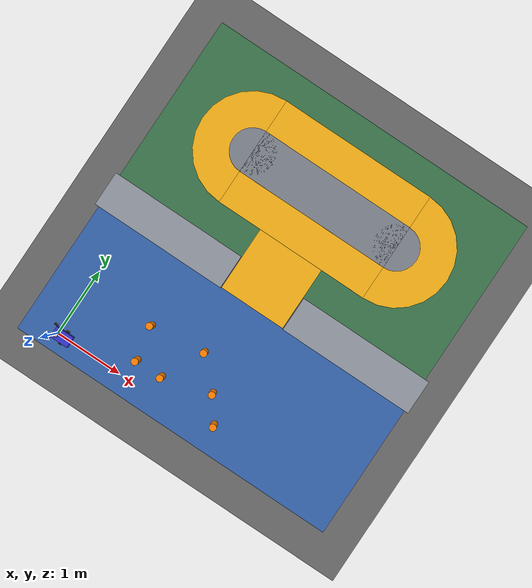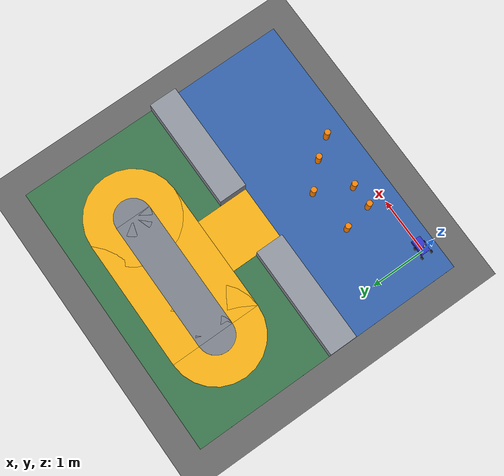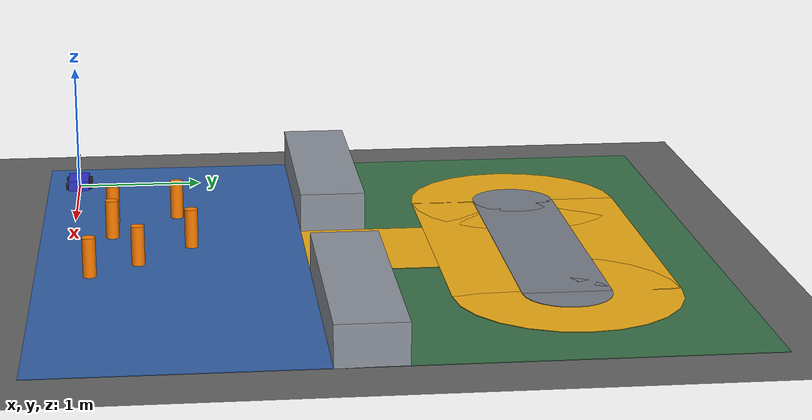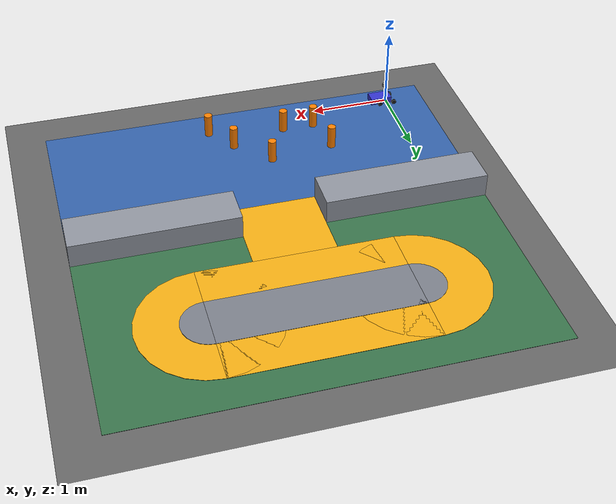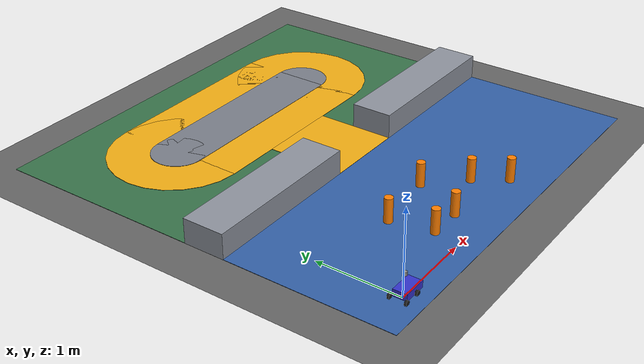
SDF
<?xml version="1.0" ?>
<sdf version="1.8">
<world name="smartcar_track">
  <!-- Physics: 200Hz step (0.005s), sufficient for 0.30 m/s Ackermann navigation.
       type="dart" is Gazebo Fortress default; 5ms vs 1ms saves ~40% CPU. -->
  <physics name="5ms" type="dart">
    <max_step_size>0.005</max_step_size>
    <real_time_factor>1.0</real_time_factor>
  </physics>

  <!-- User commands -->
  <plugin
    filename="ignition-gazebo-user-commands-system"
    name="ignition::gazebo::systems::UserCommands">
  </plugin>

  <!-- Physics -->
  <plugin
    filename="ignition-gazebo-physics-system"
    name="ignition::gazebo::systems::Physics">
  </plugin>

  <!-- Sensors (LiDAR + IMU) -->
  <plugin
    filename="ignition-gazebo-sensors-system"
    name="ignition::gazebo::systems::Sensors">
    <!-- GPU lidar needs the same Ogre2 renderer in GUI and server-only runs. -->
    <render_engine>ogre2</render_engine>
  </plugin>

  <!-- Scene broadcaster -->
  <plugin
    filename="ignition-gazebo-scene-broadcaster-system"
    name="ignition::gazebo::systems::SceneBroadcaster">
  </plugin>

  <!-- ===== LIGHTING ===== -->
  <light type="directional" name="sun">
    <pose>5 5 10 0 0 0</pose>
    <diffuse>1 1 1 1</diffuse>
    <specular>0.5 0.5 0.5 1</specular>
    <attenuation>
      <range>50</range>
    </attenuation>
    <direction>-0.5 -0.5 -1.0</direction>
    <cast_shadows>true</cast_shadows>
  </light>

  <!-- ===== GROUND PLANE ===== -->
  <model name="ground_plane">
    <static>true</static>
    <link name="link">
      <collision name="collision">
        <geometry>
          <plane>
            <normal>0 0 1</normal>
            <size>20 20</size>
          </plane>
        </geometry>
        <surface>
          <friction>
            <ode><mu>0.8</mu><mu2>0.8</mu2></ode>
          </friction>
        </surface>
      </collision>
      <visual name="visual">
        <geometry>
          <plane>
            <normal>0 0 1</normal>
            <size>20 20</size>
          </plane>
        </geometry>
        <material>
          <ambient>0.3 0.3 0.3 1</ambient>
          <diffuse>0.4 0.4 0.4 1</diffuse>
        </material>
      </visual>
    </link>
  </model>

  <!-- Generated from smartcar_tools/config/routes/field_geometry.yaml.
       Collision policy lives in config/competition_field_model.yaml. -->
  <include>
    <uri>model://competition_field</uri>
  </include>

  <model name="cone_a1"><static>true</static><pose>1.1 0.3 0.15 0 0 0</pose>
    <link name="link">
      <visual name="v"><geometry><cylinder><radius>0.05</radius><length>0.30</length></cylinder></geometry>
      <material><ambient>1 0.5 0 1</ambient><diffuse>1 0.5 0 1</diffuse></material></visual>
      <collision name="c"><geometry><cylinder><radius>0.05</radius><length>0.30</length></cylinder></geometry></collision>
    </link></model>
  <model name="cone_a2"><static>true</static><pose>1.5 0.3 0.15 0 0 0</pose>
    <link name="link">
      <visual name="v"><geometry><cylinder><radius>0.05</radius><length>0.30</length></cylinder></geometry>
      <material><ambient>1 0.5 0 1</ambient><diffuse>1 0.5 0 1</diffuse></material></visual>
      <collision name="c"><geometry><cylinder><radius>0.05</radius><length>0.30</length></cylinder></geometry></collision>
    </link></model>
  <model name="cone_a3"><static>true</static><pose>2.2 0.5 0.15 0 0 0.3</pose>
    <link name="link">
      <visual name="v"><geometry><cylinder><radius>0.05</radius><length>0.30</length></cylinder></geometry>
      <material><ambient>1 0.5 0 1</ambient><diffuse>1 0.5 0 1</diffuse></material></visual>
      <collision name="c"><geometry><cylinder><radius>0.05</radius><length>0.30</length></cylinder></geometry></collision>
    </link></model>
  <model name="cone_a4"><static>true</static><pose>1.0 0.8 0.15 0 0 0.5</pose>
    <link name="link">
      <visual name="v"><geometry><cylinder><radius>0.05</radius><length>0.30</length></cylinder></geometry>
      <material><ambient>1 0.5 0 1</ambient><diffuse>1 0.5 0 1</diffuse></material></visual>
      <collision name="c"><geometry><cylinder><radius>0.05</radius><length>0.30</length></cylinder></geometry></collision>
    </link></model>
  <model name="cone_a5"><static>true</static><pose>1.8 0.9 0.15 0 0 -0.3</pose>
    <link name="link">
      <visual name="v"><geometry><cylinder><radius>0.05</radius><length>0.30</length></cylinder></geometry>
      <material><ambient>1 0.5 0 1</ambient><diffuse>1 0.5 0 1</diffuse></material></visual>
      <collision name="c"><geometry><cylinder><radius>0.05</radius><length>0.30</length></cylinder></geometry></collision>
    </link></model>
  <!-- Keep this physical A-zone return inside the 2.5 m startup scan range,
       while leaving the protected QR vehicle footprint clear. -->
  <model name="cone_a6"><static>true</static><pose>2.45 0.15 0.15 0 0 0.7</pose>
    <link name="link">
      <visual name="v"><geometry><cylinder><radius>0.05</radius><length>0.30</length></cylinder></geometry>
      <material><ambient>1 0.5 0 1</ambient><diffuse>1 0.5 0 1</diffuse></material></visual>
      <collision name="c"><geometry><cylinder><radius>0.05</radius><length>0.30</length></cylinder></geometry></collision>
    </link></model>

  <!-- ===== ROBOT ===== -->
  <include>
    <!-- base_footprint is the rear-axle ground projection. Wheel centres in
         the model already sit one wheel radius above this plane. -->
    <pose>0 0 0 0 0 0</pose>
    <uri>model://origincar</uri>
  </include>

</world>
</sdf>

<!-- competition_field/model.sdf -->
<sdf version="1.8">
  <!-- Generated by scripts/generate_competition_field.py; do not edit. -->
  <model name="competition_field">
    <static>true</static>
    <link name="field">
      <visual name="zone_a_surface">
        <pose>2 0.75 0.002 0 0 0</pose>
        <geometry>
          <box>
            <size>5 2 0.004</size>
          </box>
        </geometry>
        <material>
          <ambient>0.2 0.38 0.66 1</ambient>
          <diffuse>0.2 0.38 0.66 1</diffuse>
        </material>
      </visual>
      <visual name="zone_b_surface">
        <pose>2 2 0.002 0 0 0</pose>
        <geometry>
          <box>
            <size>5 0.5 0.004</size>
          </box>
        </geometry>
        <material>
          <ambient>0.37 0.39 0.43 1</ambient>
          <diffuse>0.37 0.39 0.43 1</diffuse>
        </material>
      </visual>
      <visual name="zone_c_surface">
        <pose>2 3.5 0.002 0 0 0</pose>
        <geometry>
          <box>
            <size>5 2.5 0.004</size>
          </box>
        </geometry>
        <material>
          <ambient>0.22 0.45 0.29 1</ambient>
          <diffuse>0.22 0.45 0.29 1</diffuse>
        </material>
      </visual>
      <visual name="b_corridor_surface">
        <pose>2 2.225 0.006 0 0 0</pose>
        <geometry>
          <box>
            <size>1 0.95 0.004</size>
          </box>
        </geometry>
        <material>
          <ambient>0.95 0.68 0.08 1</ambient>
          <diffuse>0.95 0.68 0.08 1</diffuse>
        </material>
      </visual>
      <visual name="c_ring_outer_center">
        <pose>2 3.525 0.006 0 0 0</pose>
        <geometry>
          <box>
            <size>2.35 1.65 0.004</size>
          </box>
        </geometry>
        <material>
          <ambient>0.95 0.68 0.08 1</ambient>
          <diffuse>0.95 0.68 0.08 1</diffuse>
        </material>
      </visual>
      <visual name="c_ring_outer_west_cap">
        <pose>0.825 3.525 0.006 0 0 0</pose>
        <geometry>
          <cylinder>
            <radius>0.825</radius>
            <length>0.004</length>
          </cylinder>
        </geometry>
        <material>
          <ambient>0.95 0.68 0.08 1</ambient>
          <diffuse>0.95 0.68 0.08 1</diffuse>
        </material>
      </visual>
      <visual name="c_ring_outer_east_cap">
        <pose>3.175 3.525 0.006 0 0 0</pose>
        <geometry>
          <cylinder>
            <radius>0.825</radius>
            <length>0.004</length>
          </cylinder>
        </geometry>
        <material>
          <ambient>0.95 0.68 0.08 1</ambient>
          <diffuse>0.95 0.68 0.08 1</diffuse>
        </material>
      </visual>
      <visual name="diagnosis_room_inner_center">
        <pose>2 3.525 0.01 0 0 0</pose>
        <geometry>
          <box>
            <size>2.35 0.65 0.004</size>
          </box>
        </geometry>
        <material>
          <ambient>0.48 0.5 0.54 1</ambient>
          <diffuse>0.48 0.5 0.54 1</diffuse>
        </material>
      </visual>
      <visual name="diagnosis_room_inner_west_cap">
        <pose>0.825 3.525 0.01 0 0 0</pose>
        <geometry>
          <cylinder>
            <radius>0.325</radius>
            <length>0.004</length>
          </cylinder>
        </geometry>
        <material>
          <ambient>0.48 0.5 0.54 1</ambient>
          <diffuse>0.48 0.5 0.54 1</diffuse>
        </material>
      </visual>
      <visual name="diagnosis_room_inner_east_cap">
        <pose>3.175 3.525 0.01 0 0 0</pose>
        <geometry>
          <cylinder>
            <radius>0.325</radius>
            <length>0.004</length>
          </cylinder>
        </geometry>
        <material>
          <ambient>0.48 0.5 0.54 1</ambient>
          <diffuse>0.48 0.5 0.54 1</diffuse>
        </material>
      </visual>
      <visual name="b_wall_west">
        <pose>0.5 2 0.15 0 0 0</pose>
        <geometry>
          <box>
            <size>2 0.5 0.3</size>
          </box>
        </geometry>
        <material>
          <ambient>0.56 0.58 0.62 1</ambient>
          <diffuse>0.56 0.58 0.62 1</diffuse>
        </material>
      </visual>
      <collision name="b_wall_west_collision">
        <pose>0.5 2 0.15 0 0 0</pose>
        <geometry>
          <box>
            <size>2 0.5 0.3</size>
          </box>
        </geometry>
      </collision>
      <visual name="b_wall_east">
        <pose>3.5 2 0.15 0 0 0</pose>
        <geometry>
          <box>
            <size>2 0.5 0.3</size>
          </box>
        </geometry>
        <material>
          <ambient>0.56 0.58 0.62 1</ambient>
          <diffuse>0.56 0.58 0.62 1</diffuse>
        </material>
      </visual>
      <collision name="b_wall_east_collision">
        <pose>3.5 2 0.15 0 0 0</pose>
        <geometry>
          <box>
            <size>2 0.5 0.3</size>
          </box>
        </geometry>
      </collision>
    </link>
  </model>
</sdf>

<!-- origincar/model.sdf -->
<sdf version="1.8">
<model name="origincar">
  <!-- OriginCar Ackermann robot for Gazebo Fortress
       Dimensions: wheelbase=0.189m, track=0.189m, wheel_r=0.03m
       Rear-axle origin (base_footprint) -->

  <!-- ===== BASE FOOTPRINT (rear axle, origin) ===== -->
  <link name="base_footprint">
    <inertial>
      <mass>0.001</mass>
      <inertia><ixx>0.000001</ixx><iyy>0.000001</iyy><izz>0.000001</izz></inertia>
    </inertial>
  </link>

  <!-- ===== BASE LINK (chassis center, 0.0841m forward of rear axle) ===== -->
  <link name="base_link">
    <pose>0.0841 0 0.03 0 0 0</pose>
    <inertial>
      <mass>2.5</mass>
      <inertia>
        <ixx>0.05</ixx><iyy>0.08</iyy><izz>0.08</izz>
      </inertia>
    </inertial>
    <visual name="body_visual">
      <!-- Keep the calibrated base_link frame at wheel-centre height and
           lift only the chassis geometry to retain ground clearance. -->
      <pose>0 0 0.03 0 0 0</pose>
      <geometry><box><size>0.276 0.164 0.08</size></box></geometry>
      <material>
        <ambient>0.2 0.2 0.8 1</ambient>
        <diffuse>0.2 0.2 0.8 1</diffuse>
      </material>
    </visual>
    <collision name="body_collision">
      <pose>0 0 0.03 0 0 0</pose>
      <geometry><box><size>0.276 0.164 0.06</size></box></geometry>
    </collision>

    <sensor name="imu_sensor" type="imu">
      <topic>/imu</topic>
      <update_rate>20</update_rate>  <!-- sim: EKF bypassed, IMU unused, 100→20 saves CPU -->
      <imu>
        <angular_velocity>
          <x><noise type="gaussian"><mean>0</mean><stddev>0.0003</stddev></noise></x>
          <y><noise type="gaussian"><mean>0</mean><stddev>0.0003</stddev></noise></y>
          <z><noise type="gaussian"><mean>0</mean><stddev>0.0003</stddev></noise></z>
        </angular_velocity>
        <linear_acceleration>
          <x><noise type="gaussian"><mean>0</mean><stddev>0.01</stddev></noise></x>
          <y><noise type="gaussian"><mean>0</mean><stddev>0.01</stddev></noise></y>
          <z><noise type="gaussian"><mean>0</mean><stddev>0.01</stddev></noise></z>
        </linear_acceleration>
      </imu>
    </sensor>
  </link>

  <!-- ===== LASER LINK ===== -->
  <link name="laser_link">
    <!-- Preserve base_link -> laser_link = (-0.05, 0, 0.23). -->
    <pose>0.0341 0 0.26 0 0 0</pose>
    <inertial>
      <mass>0.001</mass>
      <inertia><ixx>0.00001</ixx><iyy>0.00001</iyy><izz>0.00001</izz></inertia>
    </inertial>
    <visual name="laser_visual">
      <geometry><cylinder><radius>0.02</radius><length>0.04</length></cylinder></geometry>
      <material><ambient>0.5 0.5 0.5 1</ambient></material>
    </visual>
    <sensor name="lidar_sensor" type="gpu_lidar">
      <topic>/scan</topic>
      <update_rate>20</update_rate>
      <lidar>
        <scan>
          <horizontal>
            <samples>360</samples>
            <resolution>1</resolution>
            <min_angle>-3.14159</min_angle>
            <max_angle>3.14159</max_angle>
          </horizontal>
        </scan>
        <range><min>0.1</min><max>12.0</max><resolution>0.01</resolution></range>
      </lidar>
      <always_on>true</always_on>
      <visualize>0</visualize>
    </sensor>
  </link>

  <!-- ===== STEERING KNUCKLES (invisible) ===== -->
  <link name="up_left_steer_link">
    <pose>0.1049 0.0945 0.03 0 0 0</pose>
    <inertial>
      <mass>0.001</mass>
      <inertia><ixx>0.00001</ixx><iyy>0.00001</iyy><izz>0.00001</izz></inertia>
    </inertial>
  </link>

  <link name="up_right_steer_link">
    <pose>0.1049 -0.0945 0.03 0 0 0</pose>
    <inertial>
      <mass>0.001</mass>
      <inertia><ixx>0.00001</ixx><iyy>0.00001</iyy><izz>0.00001</izz></inertia>
    </inertial>
  </link>

  <!-- ===== WHEELS ===== -->
  <!-- Rear-left -->
  <link name="down_left_Link">
    <pose>-0.0841 0.0945 0.03 0 0 0</pose>
    <inertial>
      <mass>0.05</mass>
      <inertia><ixx>0.0001</ixx><iyy>0.00005</iyy><izz>0.0001</izz></inertia>
    </inertial>
    <visual name="down_left_visual">
      <!-- SDF cylinders are Z-axis by default; a wheel rolling about the
           Y-axis must be rotated into that joint frame. -->
      <pose>0 0 0 1.5707963267948966 0 0</pose>
      <geometry><cylinder><radius>0.03</radius><length>0.025</length></cylinder></geometry>
      <material><ambient>0.1 0.1 0.1 1</ambient></material>
    </visual>
    <collision name="down_left_collision">
      <pose>0 0 0 1.5707963267948966 0 0</pose>
      <geometry><cylinder><radius>0.03</radius><length>0.025</length></cylinder></geometry>
      <surface><friction><ode><mu>1.0</mu><mu2>1.0</mu2></ode></friction></surface>
    </collision>
  </link>

  <!-- Rear-right -->
  <link name="down_right_Link">
    <pose>-0.0841 -0.0945 0.03 0 0 0</pose>
    <inertial>
      <mass>0.05</mass>
      <inertia><ixx>0.0001</ixx><iyy>0.00005</iyy><izz>0.0001</izz></inertia>
    </inertial>
    <visual name="down_right_visual">
      <pose>0 0 0 1.5707963267948966 0 0</pose>
      <geometry><cylinder><radius>0.03</radius><length>0.025</length></cylinder></geometry>
      <material><ambient>0.1 0.1 0.1 1</ambient></material>
    </visual>
    <collision name="down_right_collision">
      <pose>0 0 0 1.5707963267948966 0 0</pose>
      <geometry><cylinder><radius>0.03</radius><length>0.025</length></cylinder></geometry>
      <surface><friction><ode><mu>1.0</mu><mu2>1.0</mu2></ode></friction></surface>
    </collision>
  </link>

  <!-- Front-left wheel -->
  <link name="up_left_Link">
    <pose>0.1049 0.0945 0.03 0 0 0</pose>
    <inertial>
      <mass>0.05</mass>
      <inertia><ixx>0.0001</ixx><iyy>0.00005</iyy><izz>0.0001</izz></inertia>
    </inertial>
    <visual name="up_left_visual">
      <pose>0 0 0 1.5707963267948966 0 0</pose>
      <geometry><cylinder><radius>0.03</radius><length>0.025</length></cylinder></geometry>
      <material><ambient>0.1 0.1 0.1 1</ambient></material>
    </visual>
    <collision name="up_left_collision">
      <pose>0 0 0 1.5707963267948966 0 0</pose>
      <geometry><cylinder><radius>0.03</radius><length>0.025</length></cylinder></geometry>
      <surface><friction><ode><mu>1.0</mu><mu2>1.0</mu2></ode></friction></surface>
    </collision>
  </link>

  <!-- Front-right wheel -->
  <link name="up_right_Link">
    <pose>0.1049 -0.0945 0.03 0 0 0</pose>
    <inertial>
      <mass>0.05</mass>
      <inertia><ixx>0.0001</ixx><iyy>0.00005</iyy><izz>0.0001</izz></inertia>
    </inertial>
    <visual name="up_right_visual">
      <pose>0 0 0 1.5707963267948966 0 0</pose>
      <geometry><cylinder><radius>0.03</radius><length>0.025</length></cylinder></geometry>
      <material><ambient>0.1 0.1 0.1 1</ambient></material>
    </visual>
    <collision name="up_right_collision">
      <pose>0 0 0 1.5707963267948966 0 0</pose>
      <geometry><cylinder><radius>0.03</radius><length>0.025</length></cylinder></geometry>
      <surface><friction><ode><mu>1.0</mu><mu2>1.0</mu2></ode></friction></surface>
    </collision>
  </link>

  <!-- ===== JOINTS ===== -->
  <!-- base_footprint → base_link (fixed, offset handled by pose) -->
  <joint name="base_footprint_joint" type="fixed">
    <parent>base_footprint</parent>
    <child>base_link</child>
  </joint>

  <!-- base_link → laser_link (fixed) -->
  <joint name="laser_joint" type="fixed">
    <parent>base_link</parent>
    <child>laser_link</child>
  </joint>

  <!-- REAR: base_link → wheel (rotation only) -->
  <joint name="down_left_joint" type="revolute">
    <parent>base_link</parent>
    <child>down_left_Link</child>
    <axis><xyz>0 1 0</xyz><limit><lower>-1e16</lower><upper>1e16</upper></limit></axis>
  </joint>

  <joint name="down_right_joint" type="revolute">
    <parent>base_link</parent>
    <child>down_right_Link</child>
    <axis><xyz>0 1 0</xyz><limit><lower>-1e16</lower><upper>1e16</upper></limit></axis>
  </joint>

  <!-- FRONT STEERING: base_link → steer_link (revolute around Z) -->
  <joint name="up_left_steer_joint" type="revolute">
    <parent>base_link</parent>
    <child>up_left_steer_link</child>
    <axis><xyz>0 0 1</xyz>
      <!-- DART requires an effort limit for a position-limited velocity
           controller. Without it Fortress may stop Ackermann odometry after
           the initial sample. -->
      <limit><lower>-1.0</lower><upper>1.0</upper><effort>1000000</effort></limit></axis>
  </joint>

  <joint name="up_right_steer_joint" type="revolute">
    <parent>base_link</parent>
    <child>up_right_steer_link</child>
    <axis><xyz>0 0 1</xyz>
      <limit><lower>-1.0</lower><upper>1.0</upper><effort>1000000</effort></limit></axis>
  </joint>

  <!-- FRONT WHEEL ROTATION: steer_link → wheel_link (revolute around Y) -->
  <joint name="up_left_joint" type="revolute">
    <parent>up_left_steer_link</parent>
    <child>up_left_Link</child>
    <axis><xyz>0 1 0</xyz><limit><lower>-1e16</lower><upper>1e16</upper></limit></axis>
  </joint>

  <joint name="up_right_joint" type="revolute">
    <parent>up_right_steer_link</parent>
    <child>up_right_Link</child>
    <axis><xyz>0 1 0</xyz><limit><lower>-1e16</lower><upper>1e16</upper></limit></axis>
  </joint>

  <!-- ===== PLUGINS ===== -->
  <plugin filename="ignition-gazebo-ackermann-steering-system"
          name="ignition::gazebo::systems::AckermannSteering">
    <left_joint>up_left_joint</left_joint>
    <left_joint>down_left_joint</left_joint>
    <right_joint>up_right_joint</right_joint>
    <right_joint>down_right_joint</right_joint>
    <left_steering_joint>up_left_steer_joint</left_steering_joint>
    <right_steering_joint>up_right_steer_joint</right_steering_joint>
    <kingpin_width>0.189</kingpin_width>
    <steering_limit>1.04</steering_limit>
    <wheel_base>0.189</wheel_base>
    <wheel_separation>0.189</wheel_separation>
    <wheel_radius>0.03</wheel_radius>
    <min_acceleration>-100.0</min_acceleration>
    <max_acceleration>100.0</max_acceleration>
    <odom_publish_frequency>30</odom_publish_frequency>  <!-- sim: match real EKF rate, 50→30 saves ~3% CPU -->
    <topic>/cmd_vel</topic>
    <odom_topic>/odom</odom_topic>
  </plugin>

  <plugin filename="ignition-gazebo-joint-state-publisher-system"
          name="ignition::gazebo::systems::JointStatePublisher">
    <joint_name>down_left_joint</joint_name>
    <joint_name>down_right_joint</joint_name>
    <joint_name>up_left_steer_joint</joint_name>
    <joint_name>up_right_steer_joint</joint_name>
    <joint_name>up_left_joint</joint_name>
    <joint_name>up_right_joint</joint_name>
    <update_rate>20</update_rate>  <!-- sim: not consumed by nav, 50→20 -->
  </plugin>

  <plugin filename="ignition-gazebo-pose-publisher-system"
          name="ignition::gazebo::systems::PosePublisher">
    <publish_link_pose>false</publish_link_pose>
    <!-- Fortress requires nested-model publication to include this top-level
         model pose; keep both flags explicit rather than relying on defaults. -->
    <publish_nested_model_pose>true</publish_nested_model_pose>
    <publish_model_pose>true</publish_model_pose>
    <publish_visual_pose>false</publish_visual_pose>
    <publish_collision_pose>false</publish_collision_pose>
    <publish_sensor_pose>false</publish_sensor_pose>
    <use_pose_vector_msg>true</use_pose_vector_msg>
    <update_frequency>30</update_frequency>
  </plugin>

  <plugin filename="ignition-gazebo-user-commands-system"
          name="ignition::gazebo::systems::UserCommands"/>

  <plugin filename="ignition-gazebo-scene-broadcaster-system"
          name="ignition::gazebo::systems::SceneBroadcaster"/>
</model>
</sdf>
